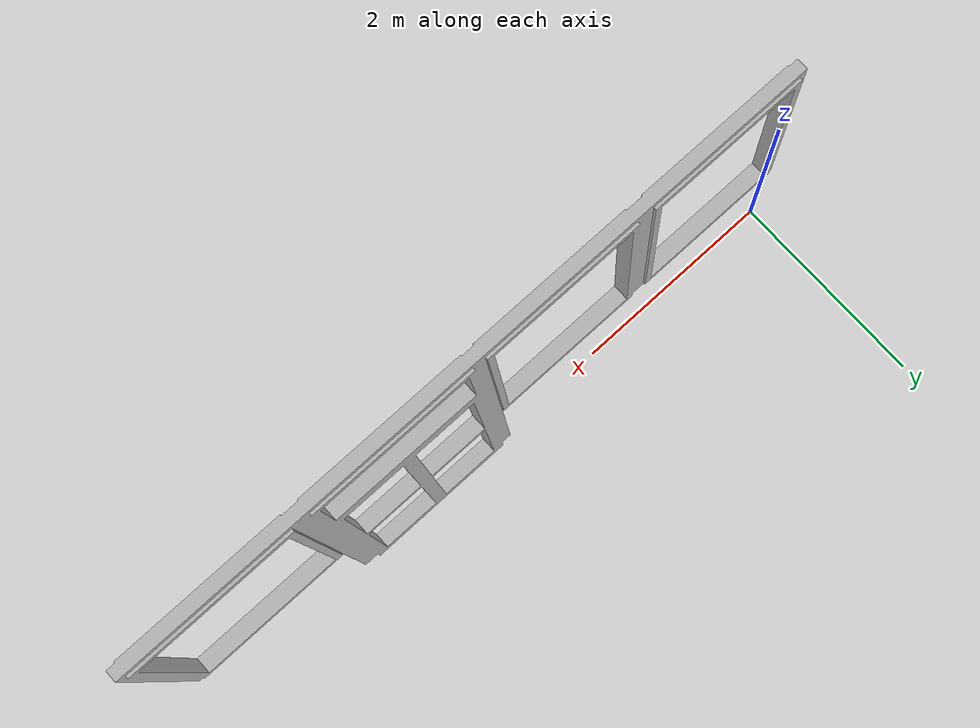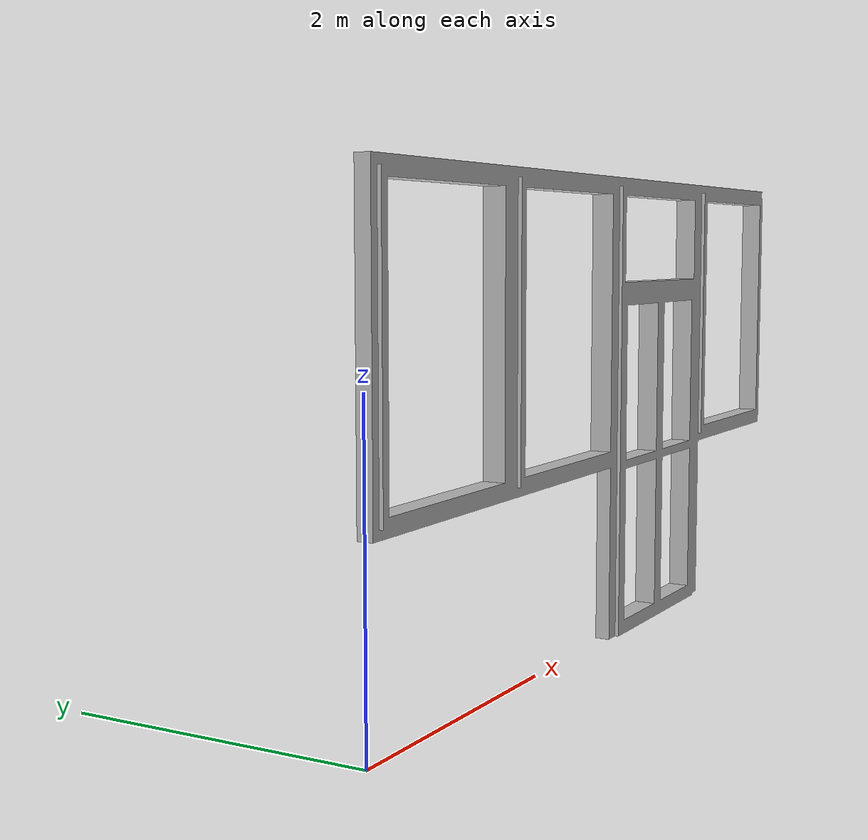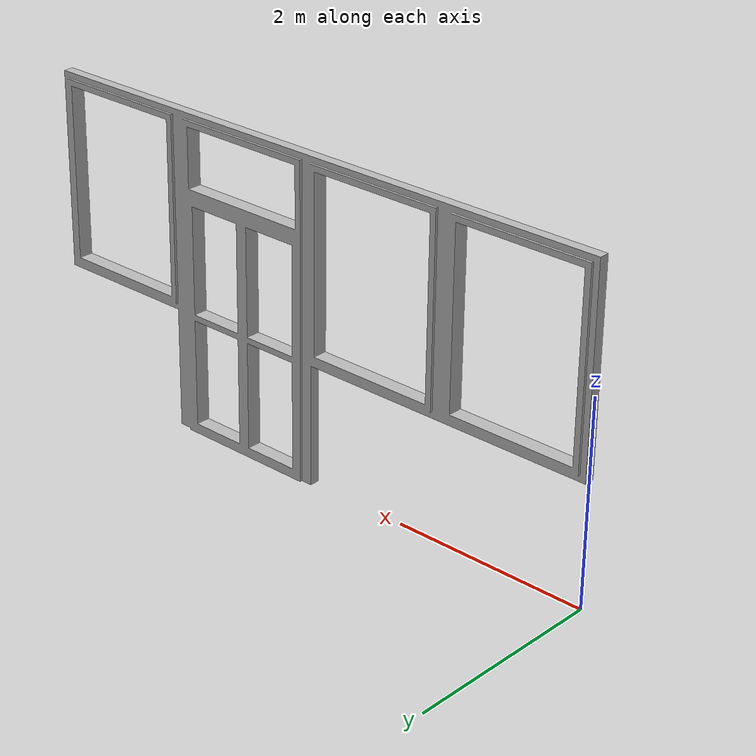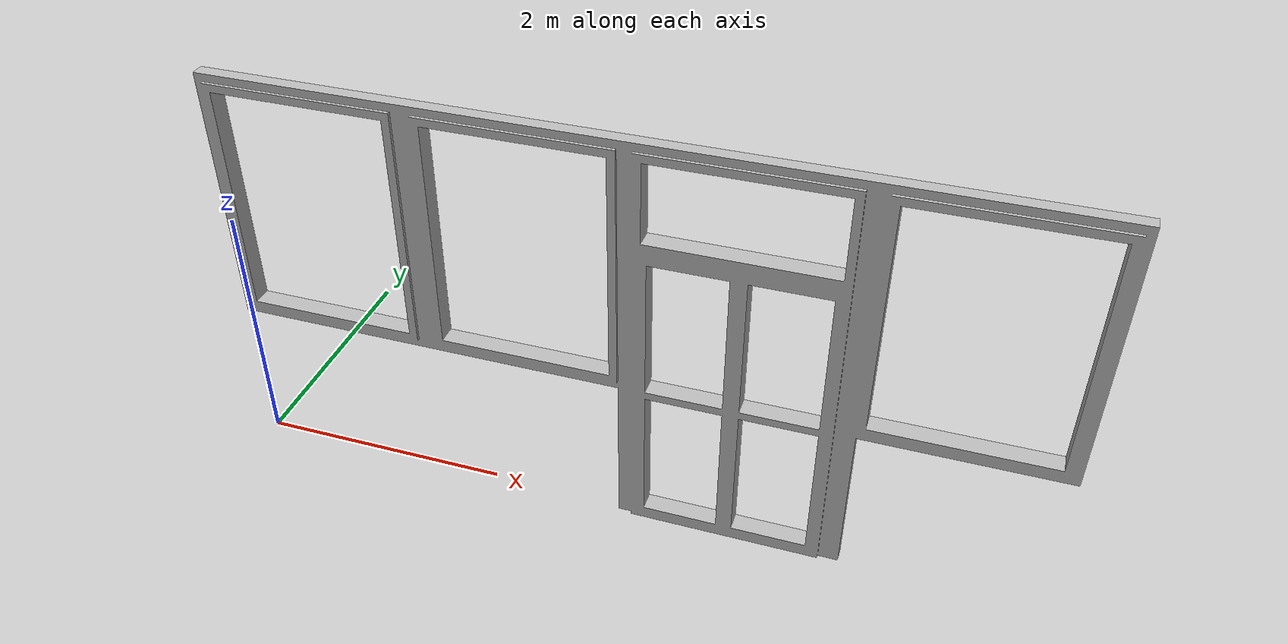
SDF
<?xml version="1.0"?>
<sdf version="1.5">
<model name="okna_s_dvermi">
	<pose>0 0 0 0 0 0</pose>
	<static>true</static>
	<link name="okna_s_dvermi_collision">
		<collision name="okna_s_dvermi_collision">
		<geometry>
			<mesh>
				<uri>model://okna_s_dvermi/meshes/model.dae</uri>

			</mesh>
		</geometry>
		</collision>
	<visual name="okna_s_dvermi_mesh">
	<cast_shadows>false</cast_shadows>
		<geometry>
			<mesh>
				<uri> model://okna_s_dvermi/meshes/model.dae</uri>

			</mesh>
		</geometry>
		<material>
		<script>
			<uri> model://okna_s_dvermi/material/scripts</uri>
			<uri> model://okna_s_dvermi/material/textures</uri>
			<name>okna_s_dvermi/Diffuse</name>
		</script>
		</material>

	</visual>
</link>
</model>
</sdf>
